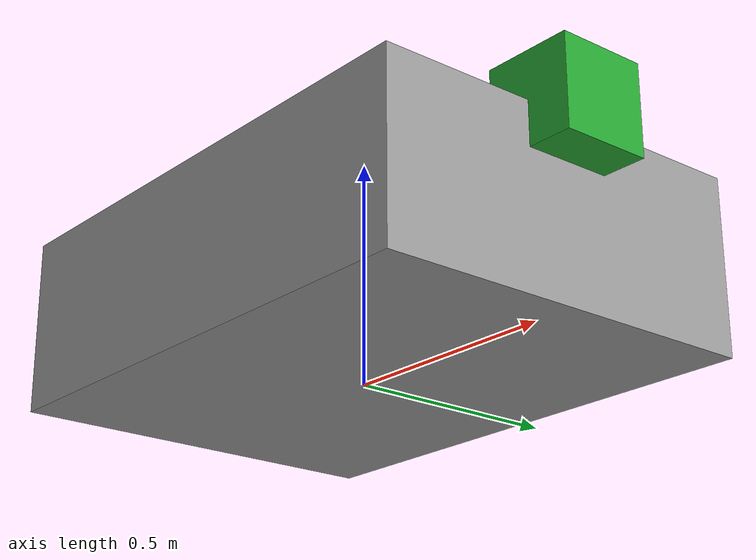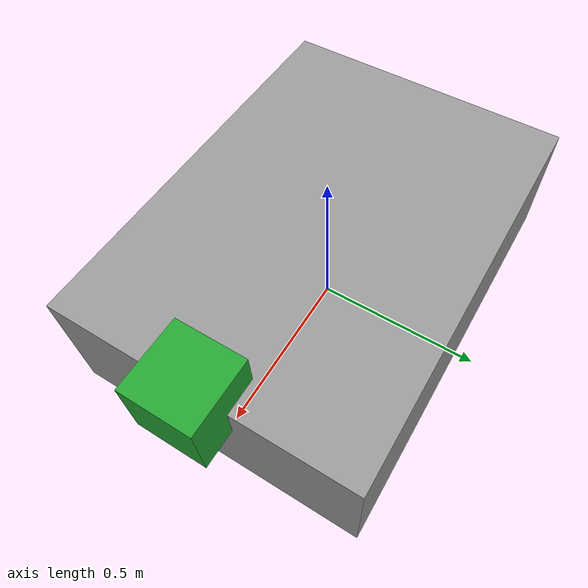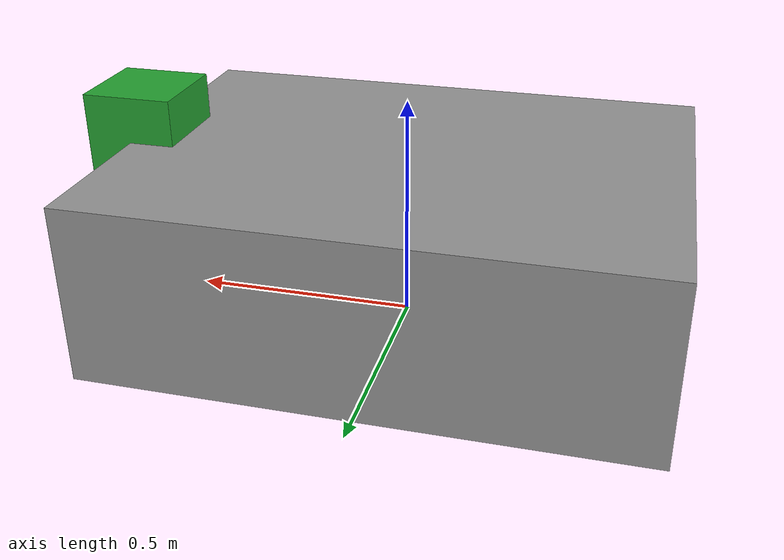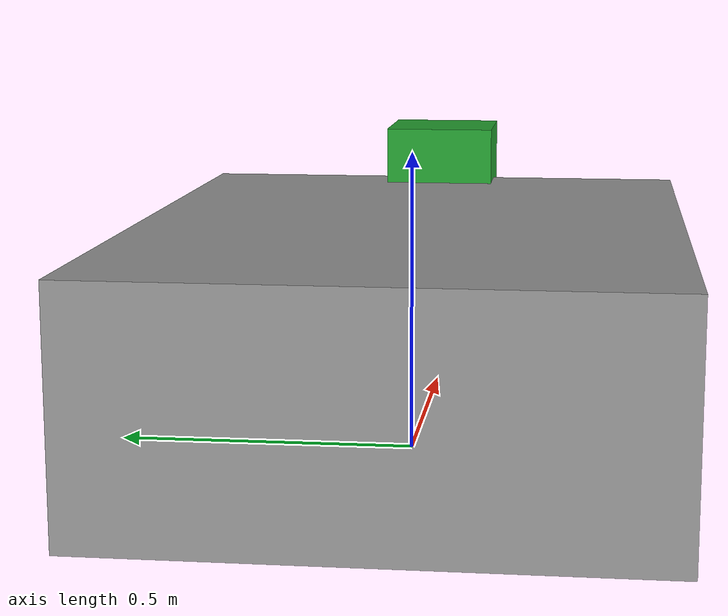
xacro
<?xml version="1.0"?>
<robot name="auckbot" xmlns:xacro="http://www.ros.org/wiki/xacro">

  <!-- Constants for robot dimensions -->
  <xacro:property name="PI" value="3.1415926535897931"/>
  <xacro:property name="base_width" value=".89" />
  <xacro:property name="base_length" value="1.20" />
  <xacro:property name="base_height" value=".39" />

  <xacro:property name="base_ground_clearance" value=".003" />

  <xacro:property name="camera_link" value="0.05" /> <!-- Size of square 'camera' box -->
  <xacro:property name="axel_offset" value="0.05" /> <!-- Space btw top of beam and the each joint -->

  <!-- Import all Gazebo-customization elements, including Gazebo colors -->
  <xacro:include filename="$(find auckbot_description)/urdf/auckbot.gazebo" />
  <!-- Import Rviz colors -->
  <xacro:include filename="$(find auckbot_description)/urdf/materials.xacro" />

  <!-- Base ....................................................................... -->
  <link name="base_link">
    <collision>
      <origin xyz="0 0 ${base_height/2-base_ground_clearance}" rpy="0 0 0"/>
      <geometry>
	    <box size="${base_length} ${base_width} ${base_height}"/>
      </geometry>
    </collision>

    <visual>
      <origin xyz="0 0 ${base_height/2-base_ground_clearance}" rpy="0 0 0"/>
      <geometry>
	    <box size="${base_length} ${base_width} ${base_height}"/>
      </geometry>
      <material name="grey"/>
    </visual>

    <inertial>
      <origin xyz="0 0 ${base_height/2-base_ground_clearance}" rpy="0 0 0"/>
      <mass value="1"/>
      <inertia
	      ixx="1.0" ixy="0.0" ixz="0.0"
	      iyy="1.0" iyz="0.0"
	      izz="1.0"/>
    </inertial>
  </link>

  <gazebo>
    <plugin name="object_controller" filename="libgazebo_ros_planar_move.so">
      <commandTopic>cmd_vel</commandTopic>
      <odometryTopic>odom</odometryTopic>
      <odometryFrame>odom</odometryFrame>
      <odometryRate>25.0</odometryRate>
      <robotBaseFrame>base_link</robotBaseFrame>
    </plugin>
  </gazebo>

  <!-- Kinect ....................................................................... -->
  <link name="kinect_link">
    <collision>
      <origin xyz="0 0 0" rpy="0 0 0"/>
      <geometry>
	    <box size=".2 .2 .2"/>
      </geometry>
    </collision>

    <visual>
      <origin xyz="0 0 0" rpy="0 0 0"/>
      <geometry>
	    <box size=".2 .2 .2"/>
      </geometry>
      <material name="green"/>
    </visual>

    <inertial>
      <origin xyz="0 0 0" rpy="0 0 0"/>
      <mass value="0"/>
      <inertia
	      ixx="0" ixy="0.0" ixz="0.0"
	      iyy="0" iyz="0.0"
	      izz="0"/>
    </inertial>
  </link>

  <joint name="kinect_joint" type="fixed">
    <axis xyz="0 1 0" />
    <origin xyz="${base_length/2} 0 ${base_height}" rpy="0 0 0"/>
    <parent link="base_link"/>
    <child link="kinect_link"/>
  </joint>

  <gazebo reference="kinect_link">
    <sensor name="kinect" type="depth">
    <always_on>true</always_on>
    <update_rate>10.0</update_rate>
    <camera>
      <horizontal_fov>${62.0*PI/180.0}</horizontal_fov>
      <image>
        <format>R8G8B8</format>
        <width>640</width>
        <height>480</height>
      </image>
      <clip>
        <near>0.1</near>
        <far>100</far>
      </clip>
    </camera>
    <plugin name="kinect_controller" filename="libgazebo_ros_openni_kinect.so">
      <alwaysOn>true</alwaysOn>
      <updateRate>20.0</updateRate>
      <cameraName>kinect</cameraName>
      <frameName>kinect_link</frameName>
      <imageTopicName>/kinect/rgb/image_raw</imageTopicName>
      <depthImageTopicName>/kinect/depth/image_raw</depthImageTopicName>
      <pointCloudTopicName>/kinect/depth/points</pointCloudTopicName>
      <cameraInfoTopicName>/kinect/rgb/camera_info</cameraInfoTopicName>
      <depthImageCameraInfoTopicName>/kinect/depth/camera_info</depthImageCameraInfoTopicName>
      <pointCloudCutoff>0.5</pointCloudCutoff>
      <baseline>0.2</baseline>
      <hackBaseline>0.0</hackBaseline>
      <distortionK1>0.0</distortionK1>
      <distortionK2>0.0</distortionK2>
      <distortionK3>0.0</distortionK3>
      <distortionT1>0.0</distortionT1>
      <distortionT2>0.0</distortionT2>
      <CxPrime>0.0</CxPrime>
      <Cx>0.0</Cx>
      <Cy>0.0</Cy>
      <focalLength>0.0</focalLength>
    </plugin>
  </sensor>
  </gazebo>

</robot>
